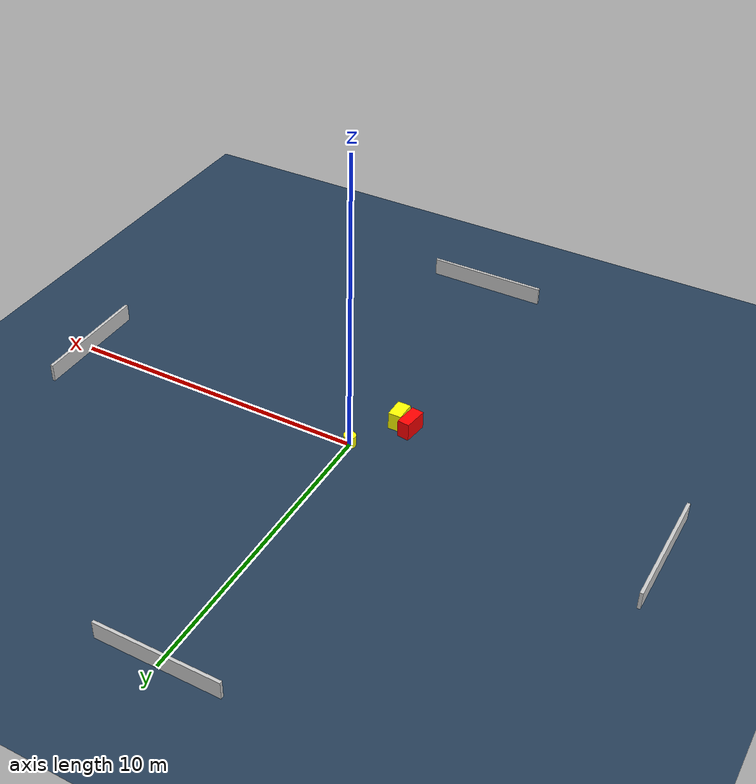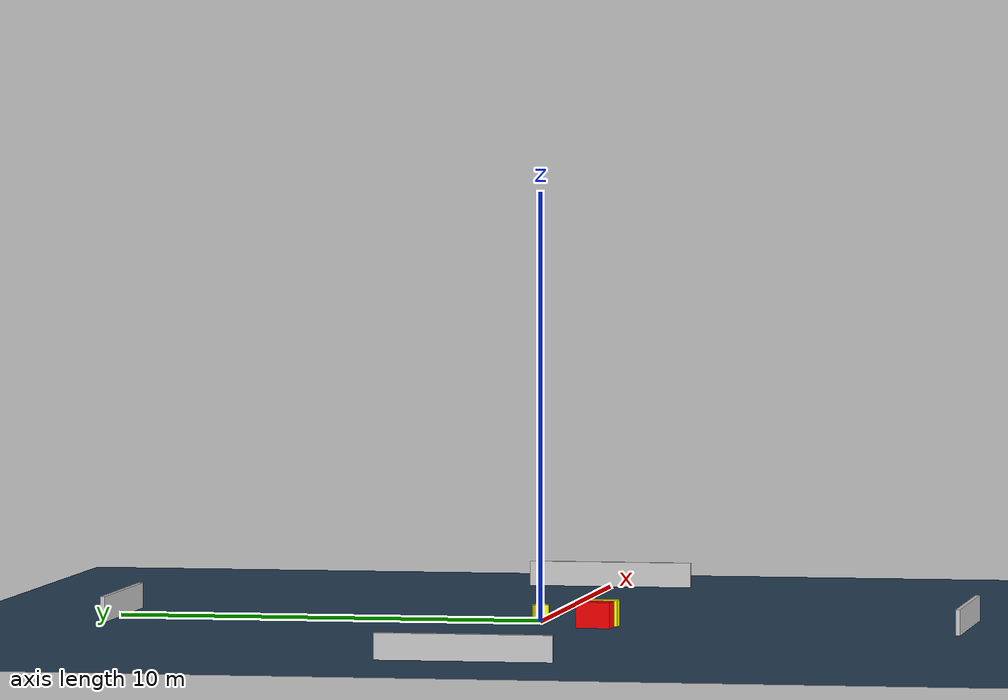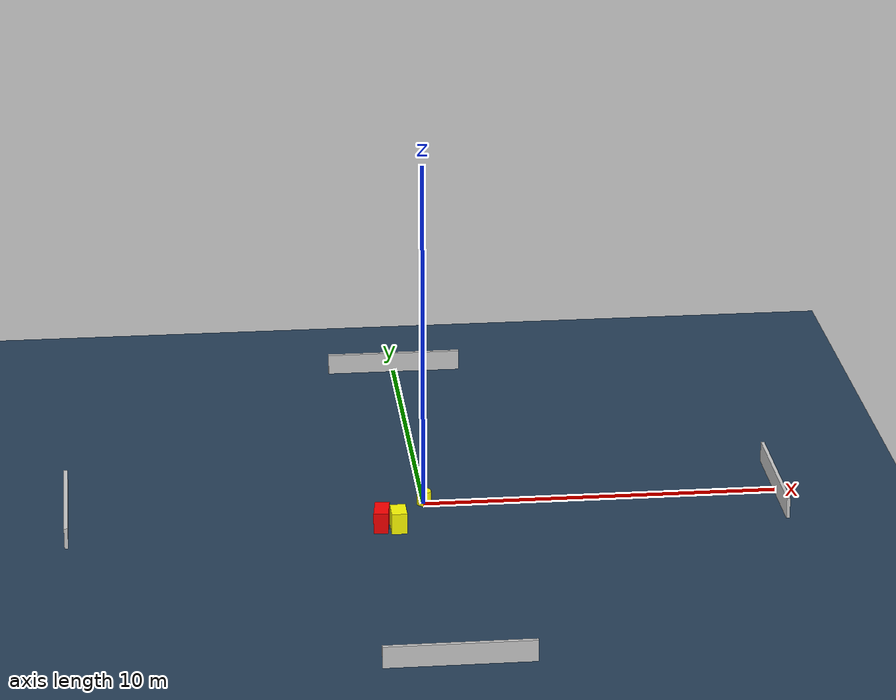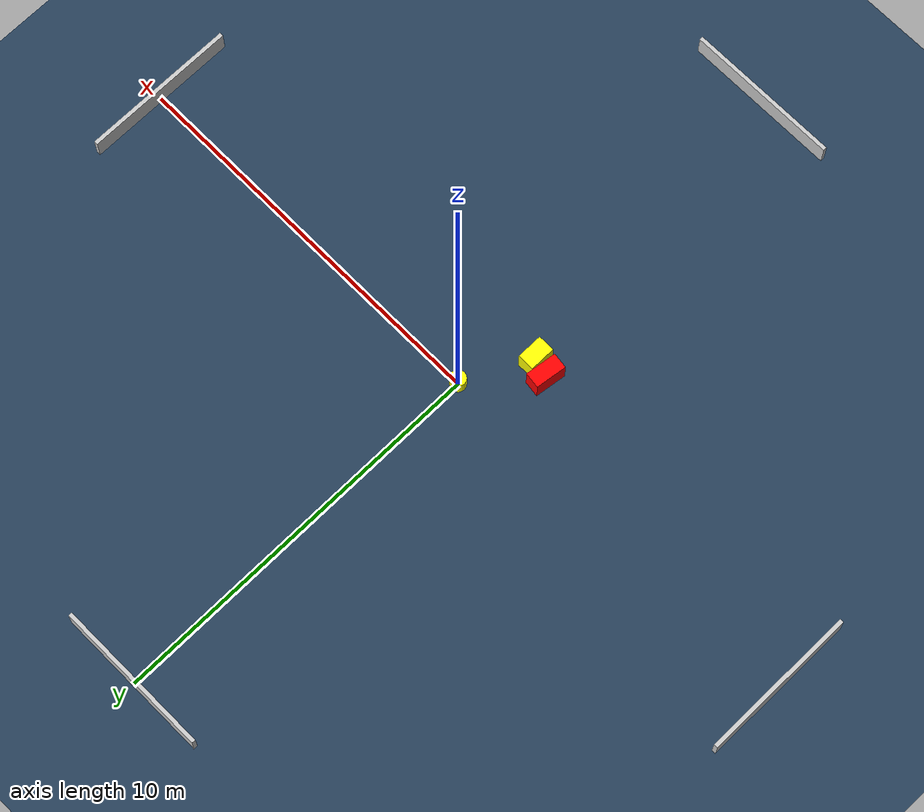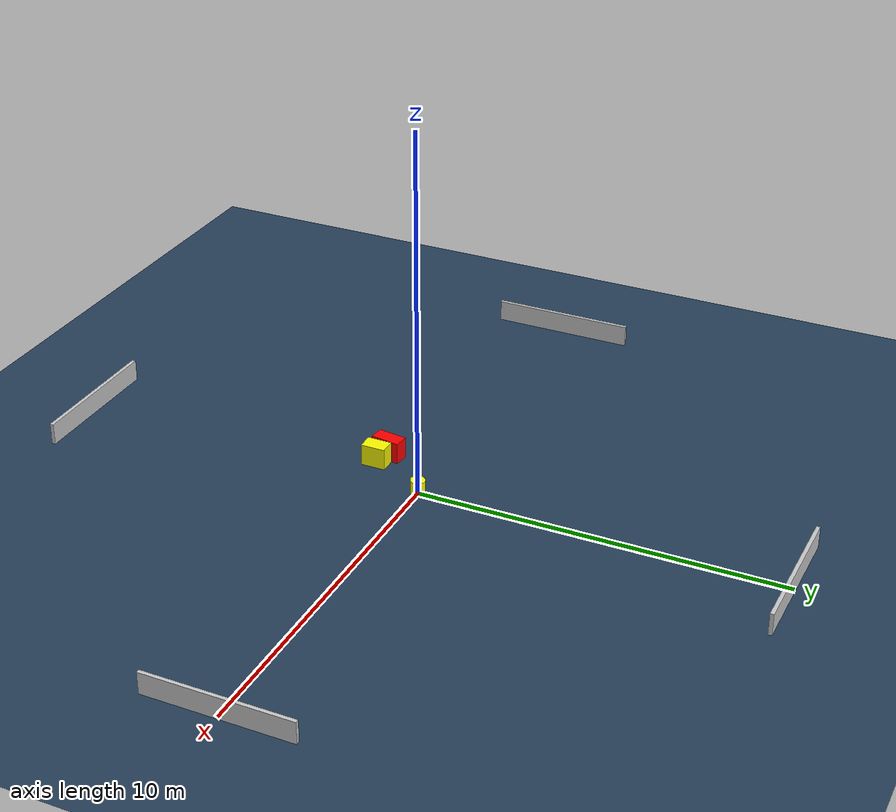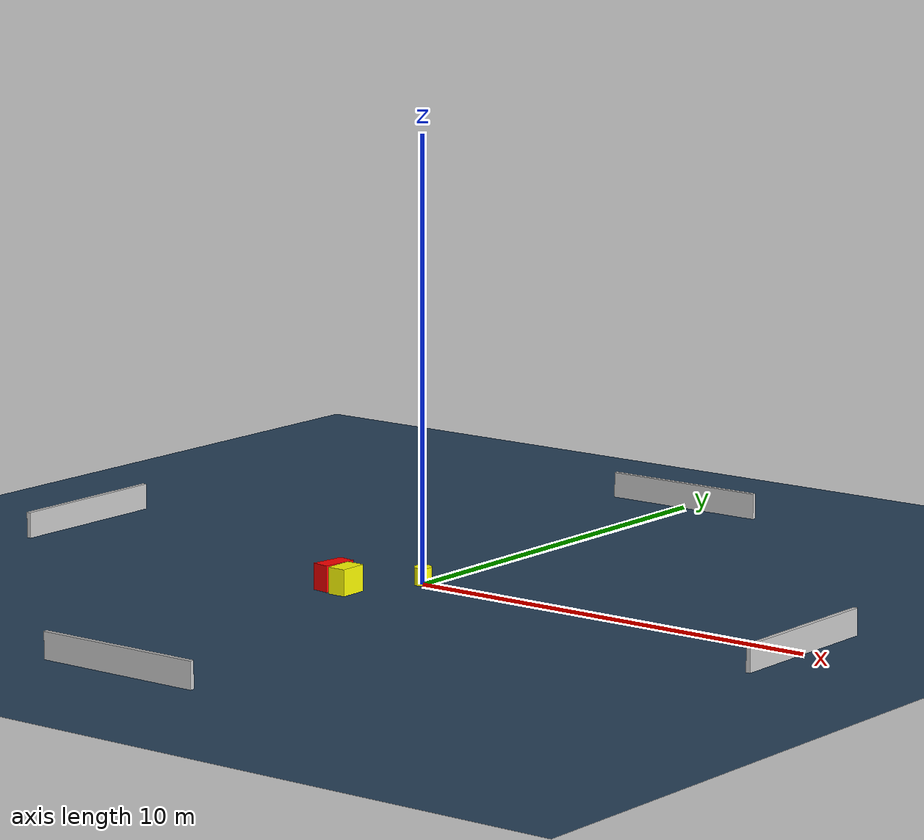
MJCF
<?xml version="1.0" ?>
<mujoco model="generated_environment">
  <option timestep="0.01" integrator="RK4" cone="elliptic"/>
  <default>
    <geom density="1"/>
  </default>
  <asset>
    <texture builtin="gradient" height="3072" name="skybox" rgb1="0.3 0.5 0.7" rgb2="0 0 0" type="skybox" width="512"/>
    <texture builtin="checker" height="300" name="groundplane" rgb1="0.2 0.3 0.4" rgb2="0.1 0.2 0.3" type="2d" width="300"/>
    <material name="groundplane" reflectance="0.2" texrepeat="5 5" texture="groundplane"/>
  </asset>
  <worldbody>
    <light dir="0 0 -1" directional="true" pos="0 0 1.5"/>
    <geom condim="3" friction="0.5 0.005 0.001" material="groundplane" name="floor" pos="0 0 0" size="0 0 0.05" type="plane"/>
    <body name="walls">
      <geom name="wall_1" condim="4" pos="-10.0 0.0 0.3" rgba="0.800000011920929 0.800000011920929 0.800000011920929 1.0" size="0.05 2.0 0.3" type="box"/>
      <geom name="wall_2" condim="4" pos="10.0 0.0 0.3" rgba="0.800000011920929 0.800000011920929 0.800000011920929 1.0" size="0.05 2.0 0.3" type="box"/>
      <geom name="wall_3" condim="4" pos="0.0 -10.0 0.3" rgba="0.800000011920929 0.800000011920929 0.800000011920929 1.0" size="2.0 0.05 0.3" type="box"/>
      <geom name="wall_4" condim="4" pos="0.0 10.0 0.3" rgba="0.800000011920929 0.800000011920929 0.800000011920929 1.0" size="2.0 0.05 0.3" type="box"/>
    </body>
    <body name="robot">
      <joint name="joint_x" type="slide" pos="0 0 0" axis="1 0 0"/>
      <joint name="joint_y" type="slide" pos="0 0 0" axis="0 1 0"/>
      <geom name="robot" type="cylinder" pos="0.0 0.0 0.2" size="0.2 0.2 0.0" mass="5.0" friction="1.0 0.005 0.0001" condim="4" rgba="1.0 1.0 0.0 1.0"/>
    </body>
    <body name="obstacle_1_movable">
      <geom name="obstacle_1_movable" condim="4" pos="-0.8551965637629868 -1.6382294081279403 0.3" euler="0 0 269.96170204291957" friction="0.0 0.005 0.001" rgba="1.0 1.0 0.0 1.0" size="0.33523486093933286 0.21638436304732622 0.3" type="box" mass="0.1"/>
      <joint type="free"/>
    </body>
    <body name="obstacle_2_static">
      <geom name="obstacle_2_static" condim="4" pos="-1.3156510551229517 -1.4968548751655726 0.3" euler="0 0 352.3200791039056" friction="0.0 0.005 0.001" rgba="1.0 0.0 0.0 1.0" size="0.20153086506692228 0.40277224304903914 0.3" type="box"/>
    </body>
  </worldbody>
  <actuator>
    <motor name="actuator_x" joint="joint_x" gear="1" ctrlrange="-1 1"/>
    <motor name="actuator_y" joint="joint_y" gear="1" ctrlrange="-1 1"/>
  </actuator>
</mujoco>
